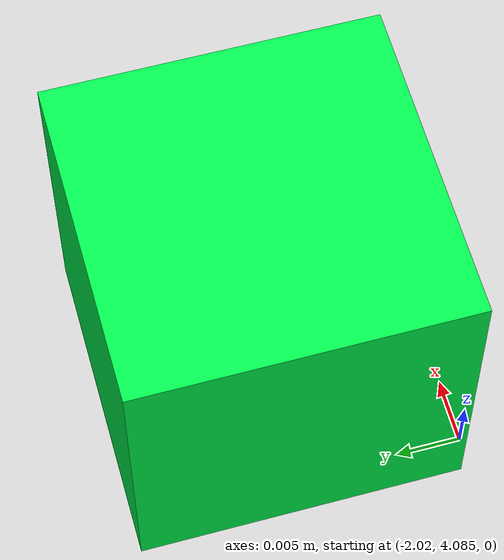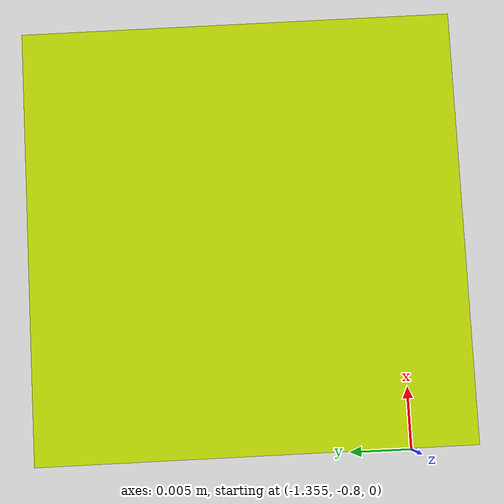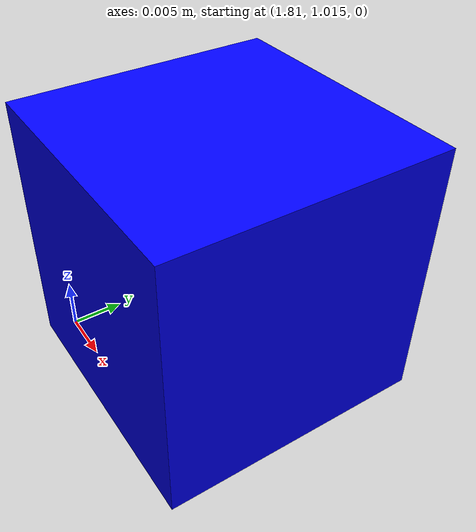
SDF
<sdf version="1.7">
 <world name="default">
  <light name="sun" type="directional">
   <pose>0 0 10 0 -0 0</pose>
   <diffuse>0.8 0.8 0.8 1</diffuse>
   <specular>0.2 0.2 0.2 1</specular>
   <attenuation>
    <range>1000</range>
    <constant>0.9</constant>
    <linear>0.01</linear>
    <quadratic>0.001</quadratic>
   </attenuation>
   <direction>-0.5 0.1 -0.9</direction>
   <spot><inner_angle>0</inner_angle><outer_angle>0</outer_angle><falloff>0</falloff></spot>
  </light>
  <model name="ground_plane">
   <static>1</static>
   <link name="link">
    <collision name="collision">
     <geometry><plane><normal>0 0 1</normal><size>100 100</size></plane></geometry>
     <surface>
      <contact><collide_bitmask>65535</collide_bitmask></contact>
      <friction><ode><mu>100</mu><mu2>50</mu2></ode></friction>
     </surface>
    </collision>
    <visual name="visual">
     <cast_shadows>0</cast_shadows>
     <geometry><plane><normal>0 0 1</normal><size>100 100</size></plane></geometry>
     <material>
      <script><uri>file://media/materials/scripts/gazebo.material</uri><name>Gazebo/Grey</name></script>
     </material>
    </visual>
   </link>
  </model>
  <gravity>0 0 -9.8</gravity>
  <magnetic_field>6e-06 2.3e-05 -4.2e-05</magnetic_field>
  <atmosphere type="adiabatic"/>
  <physics type="ode">
   <max_step_size>0.001</max_step_size>
   <real_time_factor>1</real_time_factor>
   <real_time_update_rate>1000</real_time_update_rate>
  </physics>
  <scene><ambient>0.4 0.4 0.4 1</ambient><background>0.7 0.7 0.7 1</background><shadows>1</shadows></scene>
  <spherical_coordinates>
   <surface_model>EARTH_WGS84</surface_model>
   <latitude_deg>0</latitude_deg>
   <longitude_deg>0</longitude_deg>
   <elevation>0</elevation>
   <heading_deg>0</heading_deg>
  </spherical_coordinates>
  <model name="blue_unit_box_1">
   <link name="link">
    <inertial>
     <mass>0.0109375</mass>
     <inertia>
      <ixx>1.14e-06</ixx>
      <ixy>0</ixy>
      <ixz>0</ixz>
      <iyy>1.14e-06</iyy>
      <iyz>0</iyz>
      <izz>1.14e-06</izz>
     </inertia>
    </inertial>
    <visual name="visual">
     <geometry><box><size>0.025 0.025 0.025</size></box></geometry>
     <material>
      <script><name>Gazebo/Grey</name><uri>file://media/materials/scripts/gazebo.material</uri></script>
      <shader type="pixel"><normal_map>__default__</normal_map></shader>
      <ambient>0 0 1 1</ambient>
      <diffuse>0 0 1 1</diffuse>
      <specular>0.01 0 0 1</specular>
      <emissive>0 0 0 1</emissive>
     </material>
    </visual>
    <collision name="collision">
     <geometry><box><size>0.025 0.025 0.025</size></box></geometry>
     <surface>
      <friction>
       <ode><mu>3</mu><mu2>3</mu2><fdir1>0 0 0</fdir1><slip1>0</slip1><slip2>0</slip2></ode>
       <torsional>
        <coefficient>1</coefficient>
        <patch_radius>0</patch_radius>
        <surface_radius>0</surface_radius>
        <use_patch_radius>1</use_patch_radius>
        <ode><slip>0</slip></ode>
       </torsional>
      </friction>
      <bounce><restitution_coefficient>0</restitution_coefficient><threshold>1e+06</threshold></bounce>
      <contact>
       <collide_without_contact>0</collide_without_contact>
       <collide_without_contact_bitmask>1</collide_without_contact_bitmask>
       <collide_bitmask>1</collide_bitmask>
       <ode>
        <soft_cfm>0</soft_cfm>
        <soft_erp>0.2</soft_erp>
        <kp>1e+13</kp>
        <kd>1</kd>
        <max_vel>0.01</max_vel>
        <min_depth>0</min_depth>
       </ode>
       <bullet>
        <split_impulse>1</split_impulse>
        <split_impulse_penetration_threshold>-0.01</split_impulse_penetration_threshold>
        <soft_cfm>0</soft_cfm>
        <soft_erp>0.2</soft_erp>
        <kp>1e+13</kp>
        <kd>1</kd>
       </bullet>
      </contact>
     </surface>
    </collision>
   </link>
   <static>0</static>
   <pose>1.8215 1.02513 0.0125 -0 -0 -1.6e-05</pose>
  </model>
  <model name="red_unit_box">
   <link name="link">
    <inertial>
     <mass>0.0109375</mass>
     <inertia>
      <ixx>1.14e-06</ixx>
      <ixy>0</ixy>
      <ixz>0</ixz>
      <iyy>1.14e-06</iyy>
      <iyz>0</iyz>
      <izz>1.14e-06</izz>
     </inertia>
    </inertial>
    <visual name="visual">
     <geometry><box><size>0.025 0.025 0.025</size></box></geometry>
     <material>
      <script><name>Gazebo/Grey</name><uri>file://media/materials/scripts/gazebo.material</uri></script>
      <shader type="pixel"><normal_map>__default__</normal_map></shader>
      <ambient>0.7 0 0 1</ambient>
      <diffuse>1 0 0 1</diffuse>
      <specular>0.01 0 0 1</specular>
      <emissive>0 0 0 1</emissive>
     </material>
    </visual>
    <collision name="collision">
     <geometry><box><size>0.025 0.025 0.025</size></box></geometry>
     <surface>
      <friction>
       <ode><mu>1</mu><mu2>1</mu2><fdir1>0 0 0</fdir1><slip1>0</slip1><slip2>0</slip2></ode>
       <torsional>
        <coefficient>1</coefficient>
        <patch_radius>0</patch_radius>
        <surface_radius>0</surface_radius>
        <use_patch_radius>1</use_patch_radius>
        <ode><slip>0</slip></ode>
       </torsional>
      </friction>
      <bounce><restitution_coefficient>0</restitution_coefficient><threshold>1e+06</threshold></bounce>
      <contact>
       <collide_without_contact>0</collide_without_contact>
       <collide_without_contact_bitmask>1</collide_without_contact_bitmask>
       <collide_bitmask>1</collide_bitmask>
       <ode>
        <soft_cfm>0</soft_cfm>
        <soft_erp>0.2</soft_erp>
        <kp>1e+13</kp>
        <kd>1</kd>
        <max_vel>0.01</max_vel>
        <min_depth>0</min_depth>
       </ode>
       <bullet>
        <split_impulse>1</split_impulse>
        <split_impulse_penetration_threshold>-0.01</split_impulse_penetration_threshold>
        <soft_cfm>0</soft_cfm>
        <soft_erp>0.2</soft_erp>
        <kp>1e+13</kp>
        <kd>1</kd>
       </bullet>
      </contact>
     </surface>
    </collision>
   </link>
   <static>0</static>
   <pose>2.00429 -1.98684 0.012512 -0.0003 0.00066 -1e-06</pose>
  </model>
  <model name="yellow_unit_box">
   <link name="link">
    <inertial>
     <mass>0.0109375</mass>
     <inertia>
      <ixx>1.14e-06</ixx>
      <ixy>0</ixy>
      <ixz>0</ixz>
      <iyy>1.14e-06</iyy>
      <iyz>0</iyz>
      <izz>1.14e-06</izz>
     </inertia>
    </inertial>
    <visual name="visual">
     <geometry><box><size>0.025 0.025 0.025</size></box></geometry>
     <material>
      <script><name>Gazebo/Grey</name><uri>file://media/materials/scripts/gazebo.material</uri></script>
      <shader type="pixel"><normal_map>__default__</normal_map></shader>
      <ambient>0.8 0.8 0 1</ambient>
      <diffuse>0.7 0.8 0 1</diffuse>
      <specular>0.01 0 0 1</specular>
      <emissive>0 0 0 1</emissive>
     </material>
    </visual>
    <collision name="collision">
     <geometry><box><size>0.025 0.025 0.025</size></box></geometry>
     <surface>
      <friction>
       <ode><mu>1</mu><mu2>1</mu2><fdir1>0 0 0</fdir1><slip1>0</slip1><slip2>0</slip2></ode>
       <torsional>
        <coefficient>1</coefficient>
        <patch_radius>0</patch_radius>
        <surface_radius>0</surface_radius>
        <use_patch_radius>1</use_patch_radius>
        <ode><slip>0</slip></ode>
       </torsional>
      </friction>
      <bounce><restitution_coefficient>0</restitution_coefficient><threshold>1e+06</threshold></bounce>
      <contact>
       <collide_without_contact>0</collide_without_contact>
       <collide_without_contact_bitmask>1</collide_without_contact_bitmask>
       <collide_bitmask>1</collide_bitmask>
       <ode>
        <soft_cfm>0</soft_cfm>
        <soft_erp>0.2</soft_erp>
        <kp>1e+13</kp>
        <kd>1</kd>
        <max_vel>0.01</max_vel>
        <min_depth>0</min_depth>
       </ode>
       <bullet>
        <split_impulse>1</split_impulse>
        <split_impulse_penetration_threshold>-0.01</split_impulse_penetration_threshold>
        <soft_cfm>0</soft_cfm>
        <soft_erp>0.2</soft_erp>
        <kp>1e+13</kp>
        <kd>1</kd>
       </bullet>
      </contact>
     </surface>
    </collision>
   </link>
   <static>0</static>
   <pose>-1.34029 -0.787377 0.012512 -0.0003 0.00066 -1e-06</pose>
  </model>
  <model name="green_unit_box">
   <link name="link">
    <inertial>
     <mass>0.0109375</mass>
     <inertia>
      <ixx>1.14e-06</ixx>
      <ixy>0</ixy>
      <ixz>0</ixz>
      <iyy>1.14e-06</iyy>
      <iyz>0</iyz>
      <izz>1.14e-06</izz>
     </inertia>
    </inertial>
    <visual name="visual">
     <geometry><box><size>0.025 0.025 0.025</size></box></geometry>
     <material>
      <script><name>Gazebo/Grey</name><uri>file://media/materials/scripts/gazebo.material</uri></script>
      <shader type="pixel"><normal_map>__default__</normal_map></shader>
      <ambient>0 1 0.3 1</ambient>
      <diffuse>0 1 0.3 1</diffuse>
      <specular>0.01 0 0 1</specular>
      <emissive>0 0 0 1</emissive>
     </material>
    </visual>
    <collision name="collision">
     <geometry><box><size>0.025 0.025 0.025</size></box></geometry>
     <surface>
      <friction>
       <ode><mu>1</mu><mu2>1</mu2><fdir1>0 0 0</fdir1><slip1>0</slip1><slip2>0</slip2></ode>
       <torsional>
        <coefficient>1</coefficient>
        <patch_radius>0</patch_radius>
        <surface_radius>0</surface_radius>
        <use_patch_radius>1</use_patch_radius>
        <ode><slip>0</slip></ode>
       </torsional>
      </friction>
      <bounce><restitution_coefficient>0</restitution_coefficient><threshold>1e+06</threshold></bounce>
      <contact>
       <collide_without_contact>0</collide_without_contact>
       <collide_without_contact_bitmask>1</collide_without_contact_bitmask>
       <collide_bitmask>1</collide_bitmask>
       <ode>
        <soft_cfm>0</soft_cfm>
        <soft_erp>0.2</soft_erp>
        <kp>1e+13</kp>
        <kd>1</kd>
        <max_vel>0.01</max_vel>
        <min_depth>0</min_depth>
       </ode>
       <bullet>
        <split_impulse>1</split_impulse>
        <split_impulse_penetration_threshold>-0.01</split_impulse_penetration_threshold>
        <soft_cfm>0</soft_cfm>
        <soft_erp>0.2</soft_erp>
        <kp>1e+13</kp>
        <kd>1</kd>
       </bullet>
      </contact>
     </surface>
    </collision>
   </link>
   <static>0</static>
   <pose>-2.00994 4.09819 0.012512 -0.0003 0.00066 -1e-06</pose>
  </model>
 </world>
</sdf>
